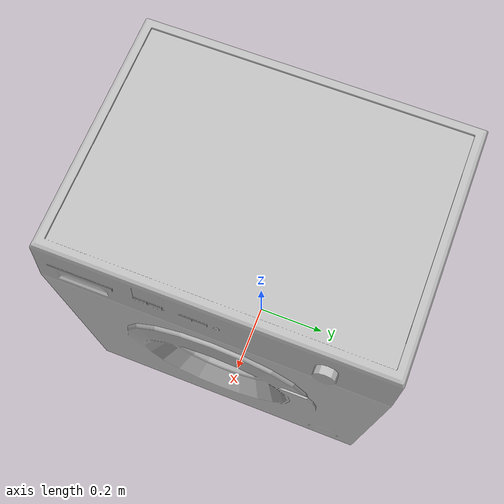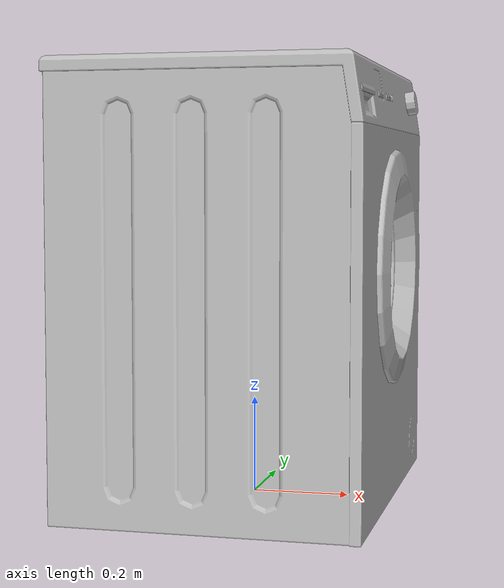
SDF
<?xml version='1.0'?>
<sdf version='1.4'>
  <model name='85'>
    <pose>0 0 0 0 0 0</pose>
    <static>true</static>
    <link name='link'>
      <collision name='collision'>
        <pose>0 0 0 0 0 0</pose>
        <geometry>
          <box>
            <size>0.63 0.800002 2</size>
          </box>
        </geometry>
      </collision>
      <visual name='visual'>
        <pose>0 0 0 0 0 0</pose>
        <geometry>
          <mesh><uri>model://85/85.dae</uri></mesh>
        </geometry>
      </visual>
    </link>
  </model>
</sdf>
